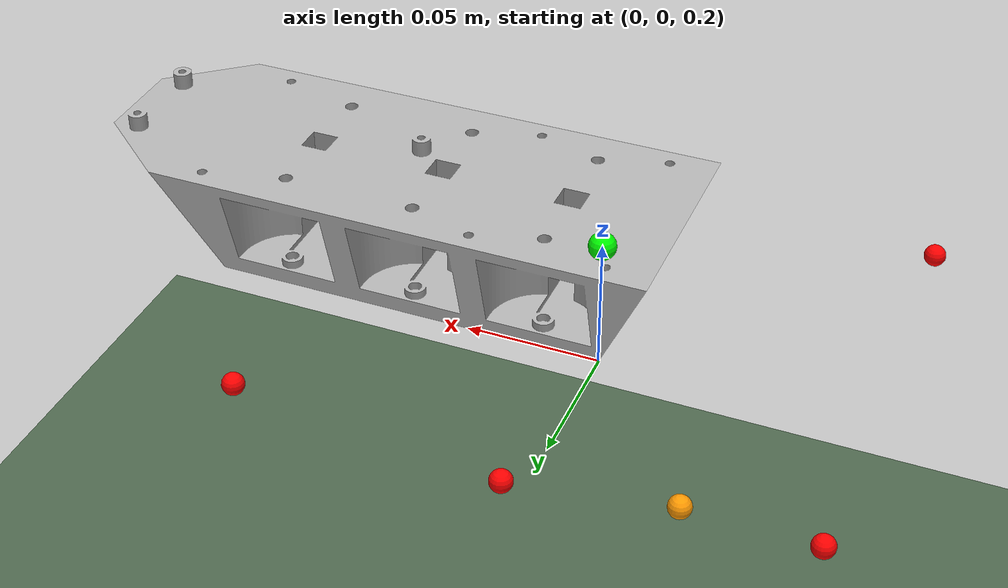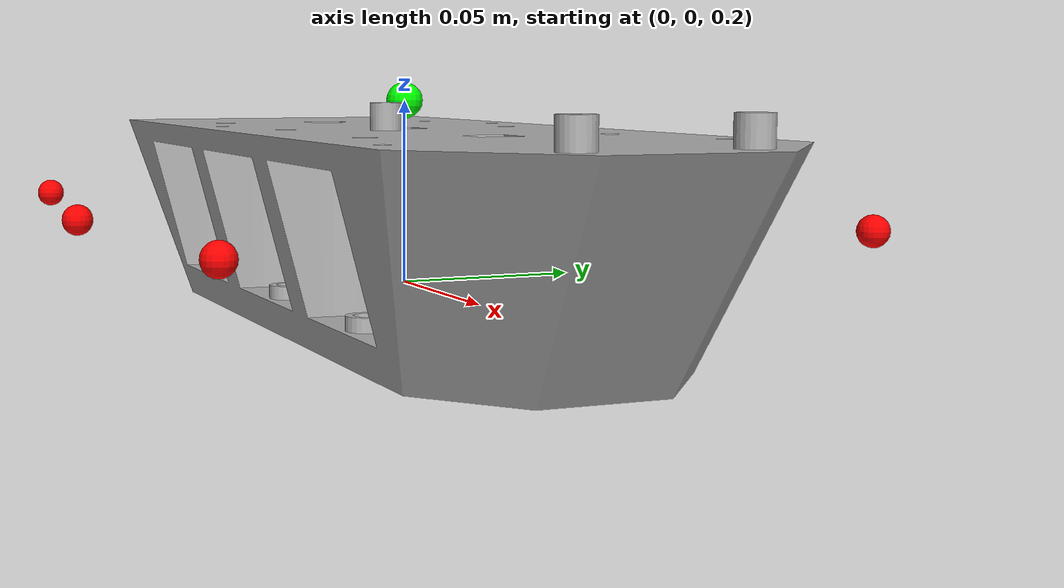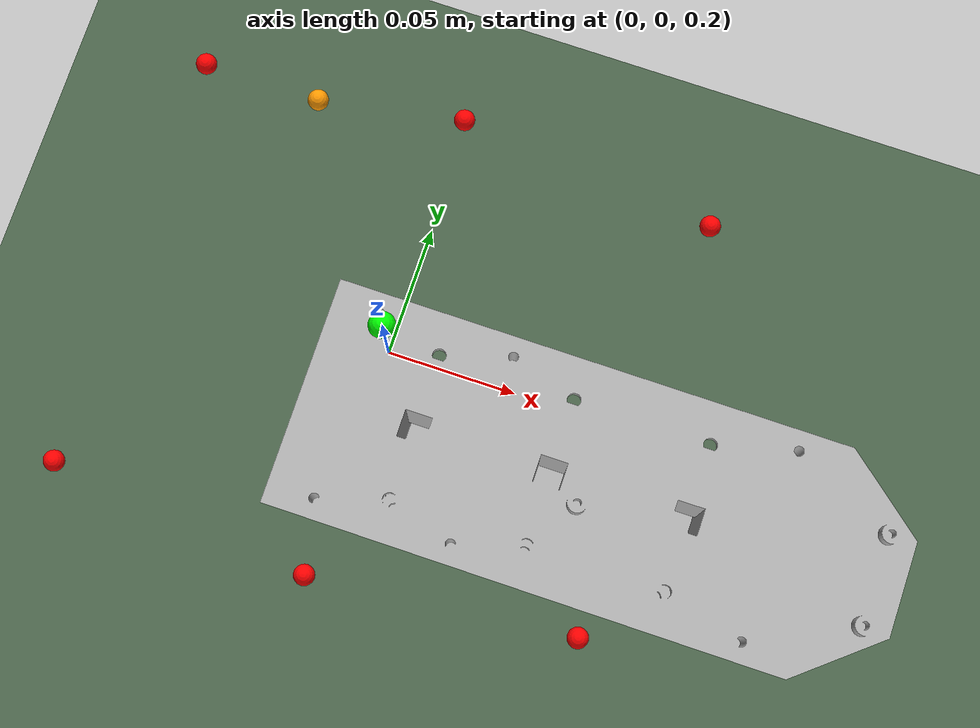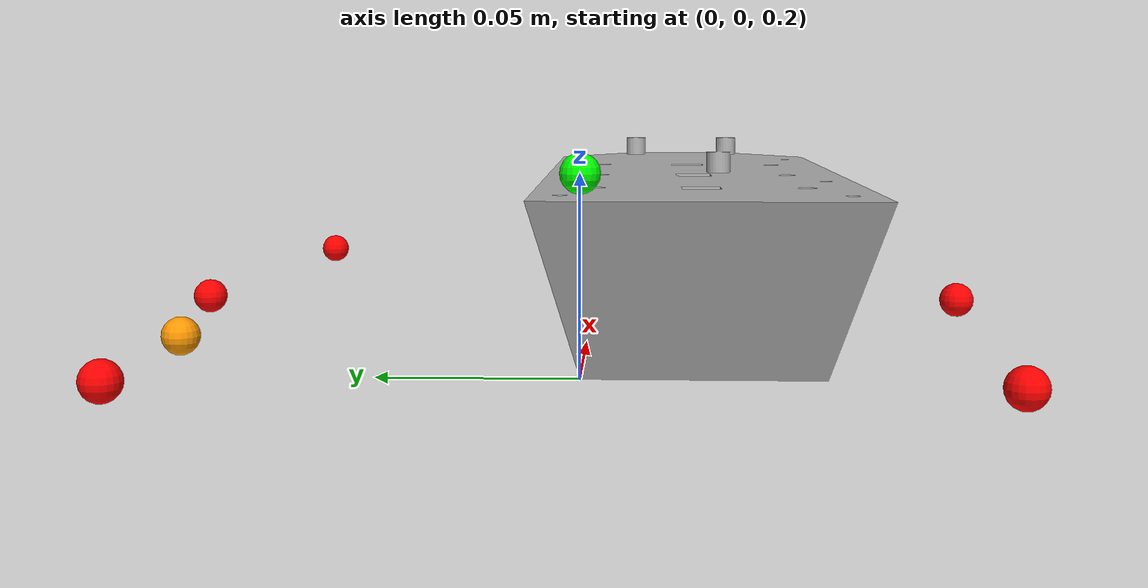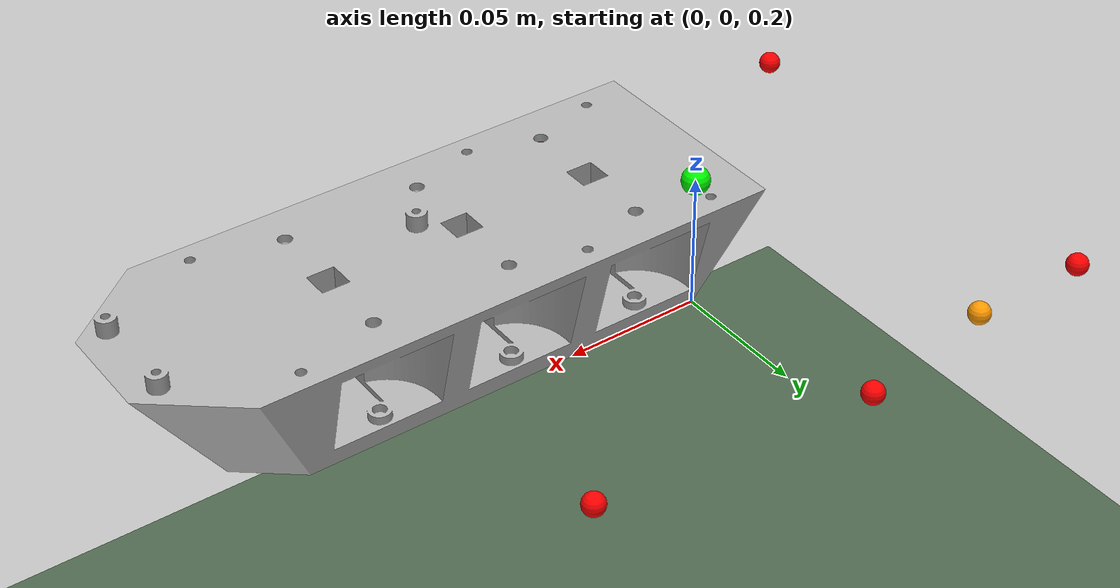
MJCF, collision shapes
<mujoco model="hexapod">
  <compiler angle="degree" inertiafromgeom="true"/>
  <option gravity="0 0 -9.81" integrator="RK4" timestep="0.002"/>

    <asset>
        <mesh name="torso_mesh" file="3D_models/Frame.stl" scale="0.001 0.001 0.001"/>
        <!-- (기존 asset 블록 안에 추가) -->
        <mesh name="servo_rl_mesh" file="3D_models/ServoUnit_matched.stl" scale="0.001 0.001 0.001"/>
        <mesh name="adapter_rl_mesh" file="3D_models/Leg_lr_JointAdapter_matched.stl" scale="0.001 0.001 0.001"/>

        <texture name="tile_tex" type="2d" builtin="checker"
             rgb1="1 1 1" rgb2="0.2 0.2 0.2"
             width="512" height="512"/>
        <material name="tile_mat" texture="tile_tex" texrepeat="20 20" rgba="1 1 1 1"/>
    </asset>

    <worldbody>
        <light name="sun" directional="true"
            diffuse="0.2 0.2 0.2"
            ambient="0.35 0.35 0.35"
            specular="0.25 0.25 0.25"
            pos="0 0 5" dir="0 0 -1"/>
        <camera name="cam_fixed" pos="1.6 -2.2 1.0" euler="30 0 30"/>

        <body name="terrain" pos="0 0 0">
            <geom name="ground" type="plane" size="5 5 0.1" material="tile_mat" rgba="0.3 0.4 0.3 1"/>
        </body>

        <body name="torso" pos="0 0 0.20" euler="0 0 0">
            <freejoint name="root_free"/>

            <geom name="torso_vis" type="mesh" mesh="torso_mesh"
            contype = "1" conaffinity="1"
            friction="1.0 0.005 0.0001"
            rgba="0.7 0.7 0.7 1" mass="0.1"/>

            <site name="imu_site" pos="0 0 0.05" size="0.005" rgba="0 1 0 1"/>
            <site name="hip_fl_site" pos="0.10  0.08 0.02" size="0.004" rgba="1 0 0 1"/>
            <site name="hip_fr_site" pos="0.10 -0.08 0.02" size="0.004" rgba="1 0 0 1"/>
            <site name="hip_ml_site" pos="0.00  0.09 0.02" size="0.004" rgba="1 0 0 1"/>
            <site name="hip_mr_site" pos="0.00 -0.09 0.02" size="0.004" rgba="1 0 0 1"/>
            <site name="hip_rl_site" pos="-0.10  0.08 0.02" size="0.004" rgba="1 0 0 1"/>
            <site name="hip_rr_site" pos="-0.10 -0.08 0.02" size="0.004" rgba="1 0 0 1"/>

            <body name="hip_rl" pos="-0.10 0.08 0.02">
                <!-- yaw 회전: +Z 축, 범위는 예시값 -->
                <joint name="yaw_rl" type="hinge" axis="0 0 1" range="-60 60" damping="0.1"/>

                <geom name="servo_rl_vis"   type="mesh" mesh="servo_rl_mesh"   contype="0" conaffinity="0" rgba="0.3 0.3 0.8 1"/>
                <geom name="adapter_rl_vis" type="mesh" mesh="adapter_rl_mesh" contype="0" conaffinity="0" rgba="0.8 0.8 0.8 1"/>

                <!-- 다음 링크(허벅지 등)를 붙일 기준점 -->
                <site name="rl_link_mount" pos="0.045 0 0" size="0.004" rgba="1 0.6 0 1"/>
                </body>
            </body>
    </worldbody>

</mujoco>
